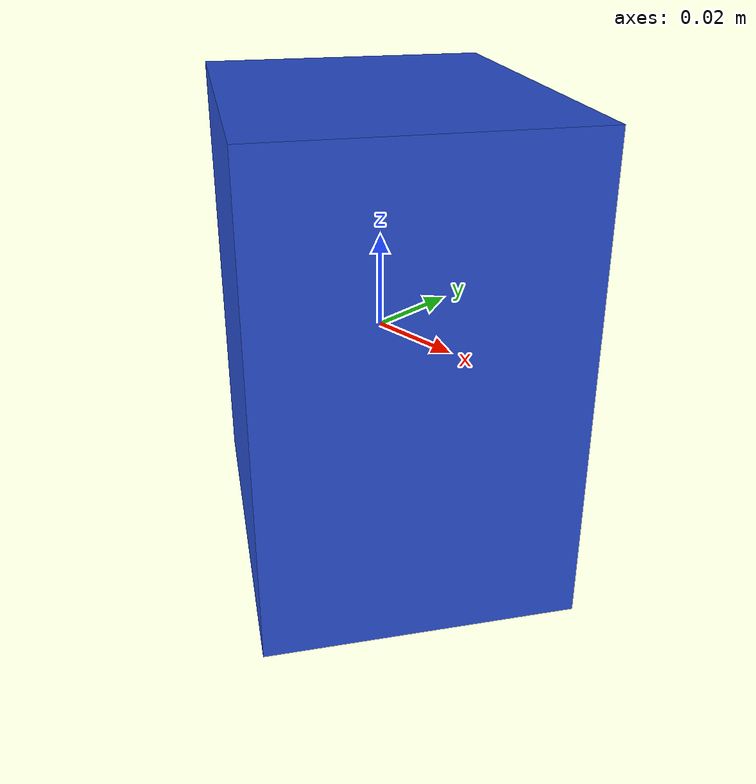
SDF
<sdf version="1.6"><model name="model_17"><static>true</static><link name="link"><pose>0 0 0 0 0 2.5795045055576495</pose><collision name="collision"><geometry><box><size>0.08011805218376712 0.06355556044912217 0.1</size></box></geometry></collision><visual name="visual"><geometry><box><size>0.08011805218376712 0.06355556044912217 0.1</size></box></geometry><material><script><name>Gazebo/Blue</name><uri>file://media/materials/scripts/gazebo.material</uri></script></material></visual></link></model></sdf>
